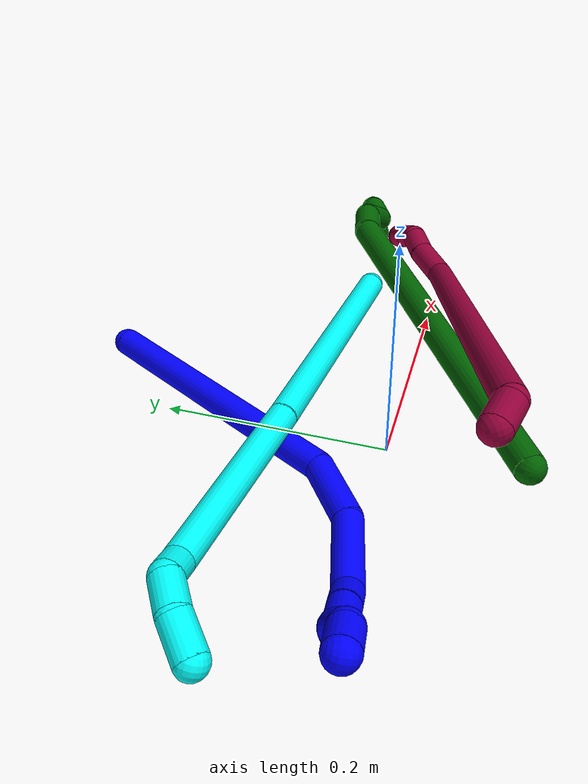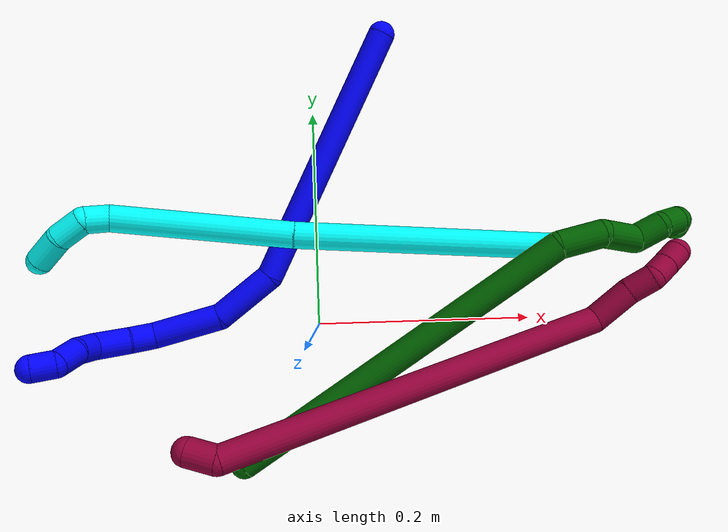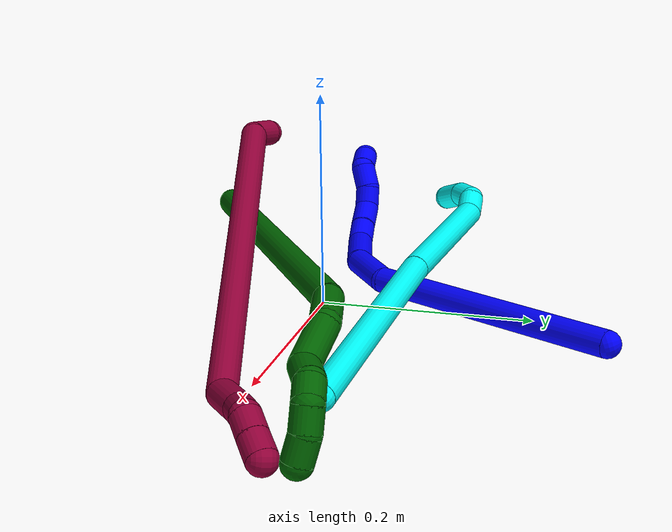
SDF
<sdf version="1.7">
 <world name="default">
  <model name="photoneo_s_sensor">
   <static>1</static>
   <pose>0 0 2 1.57079 1.57079 3.14159</pose>
   <link name="link">
    <inertial><mass>0.1</mass></inertial>
    <sensor name="sensor" type="depth">
     <update_rate>30</update_rate>
     <camera>
      <horizontal_fov>1.22</horizontal_fov>
      <image><width>1920</width><height>1200</height><format>B8G8R8</format></image>
      <clip><near>0.1</near><far>4</far></clip>
      <depth_camera><output>points</output></depth_camera>
     </camera>
     <plugin name="camera_plugin" filename="libgazebo_ros_depth_camera.so">
      <baseline>0.2</baseline>
      <alwaysOn>1</alwaysOn>
      <updateRate>0.0</updateRate>
      <cameraName>camera_ir</cameraName>
      <imageTopicName>/camera/color/image_raw</imageTopicName>
      <cameraInfoTopicName>/camera/color/camera_info</cameraInfoTopicName>
      <depthImageTopicName>/camera/depth/image_raw</depthImageTopicName>
      <depthImageCameraInfoTopicName>/camera/depth/camera_info</depthImageCameraInfoTopicName>
      <pointCloudTopicName>/camera/depth/points</pointCloudTopicName>
      <frameName>fr_optical</frameName>
      <pointCloudCutoff>0.1</pointCloudCutoff>
      <pointCloudCutoffMax>2.0</pointCloudCutoffMax>
      <distortionK1>0</distortionK1>
      <distortionK2>0</distortionK2>
      <distortionK3>0</distortionK3>
      <distortionT1>0</distortionT1>
      <distortionT2>0</distortionT2>
      <CxPrime>0</CxPrime>
      <Cx>0</Cx>
      <Cy>0</Cy>
      <focalLength>0</focalLength>
      <hackBaseline>0</hackBaseline>
     </plugin>
    </sensor>
   </link>
  </model>
  <model name="bin">
   <static>1</static>
   <link name="bottom">
    <collision name="collision-bottom">
     <pose>0 0 -0.01 0 -0 0</pose>
     <geometry><box><size>0.8 0.6 0.02</size></box></geometry>
     <surface>
      <friction><ode><mu>100</mu><mu2>100</mu2></ode></friction>
      <contact><collide_bitmask>65535</collide_bitmask></contact>
     </surface>
    </collision>
   </link>
   <link name="west_wall">
    <collision name="collision-west_wall">
     <pose>-0.41 0 0.1 0 -0 0</pose>
     <geometry><box><size>0.02 0.6 0.2</size></box></geometry>
     <surface>
      <friction><ode><mu>100</mu><mu2>100</mu2></ode></friction>
      <contact><collide_bitmask>65535</collide_bitmask></contact>
     </surface>
    </collision>
   </link>
   <link name="east_wall">
    <collision name="collision-east_wall">
     <pose>0.41 0 0.1 0 -0 0</pose>
     <geometry><box><size>0.02 0.6 0.2</size></box></geometry>
     <surface>
      <friction><ode><mu>100</mu><mu2>100</mu2></ode></friction>
      <contact><collide_bitmask>65535</collide_bitmask></contact>
     </surface>
    </collision>
   </link>
   <link name="south_wall">
    <collision name="collision-south_wall">
     <pose>0 -0.31 0.1 0 -0 0</pose>
     <geometry><box><size>0.8 0.02 0.2</size></box></geometry>
     <surface>
      <friction><ode><mu>100</mu><mu2>100</mu2></ode></friction>
      <contact><collide_bitmask>65535</collide_bitmask></contact>
     </surface>
    </collision>
   </link>
   <link name="north_wall">
    <collision name="collision-north_wall">
     <pose>0 0.31 0.1 0 -0 0</pose>
     <geometry><box><size>0.8 0.02 0.2</size></box></geometry>
     <surface>
      <friction><ode><mu>100</mu><mu2>100</mu2></ode></friction>
      <contact><collide_bitmask>65535</collide_bitmask></contact>
     </surface>
    </collision>
   </link>
  </model>
  <model name="1">
   <static>0</static>
   <link name="1">
    <collision name="collision-cylinder-e_1_1_4">
     <pose>-0.061601 -0.061433 -0.090619 2.54584 -0.512518 -1.41299</pose>
     <geometry><cylinder><radius>0.0125</radius><length>0.25124</length></cylinder></geometry>
     <surface>
      <friction><ode><mu>1.16</mu><mu2>1.16</mu2><slip1>0</slip1><slip2>0</slip2></ode></friction>
      <contact><ode><kp>1e+06</kp><kd>1</kd><max_vel>0</max_vel><min_depth>0.001</min_depth></ode></contact>
     </surface>
    </collision>
    <visual name="visual-cylinder-e_1_1_4">
     <pose>-0.061601 -0.061433 -0.090619 2.54584 -0.512518 -1.41299</pose>
     <geometry><cylinder><radius>0.0125</radius><length>0.25124</length></cylinder></geometry>
     <material><ambient>0 0 1 1</ambient></material>
    </visual>
    <collision name="collision-cylinder-e_2_4_5">
     <pose>-0.146285 -0.138587 -0.192291 2.18357 -0.876533 -1.46827</pose>
     <geometry><cylinder><radius>0.0125</radius><length>0.060073</length></cylinder></geometry>
     <surface>
      <friction><ode><mu>1.16</mu><mu2>1.16</mu2><slip1>0</slip1><slip2>0</slip2></ode></friction>
      <contact><ode><kp>1e+06</kp><kd>1</kd><max_vel>0</max_vel><min_depth>0.001</min_depth></ode></contact>
     </surface>
    </collision>
    <visual name="visual-cylinder-e_2_4_5">
     <pose>-0.146285 -0.138587 -0.192291 2.18357 -0.876533 -1.46827</pose>
     <geometry><cylinder><radius>0.0125</radius><length>0.060073</length></cylinder></geometry>
     <material><ambient>0 0 1 1</ambient></material>
    </visual>
    <collision name="collision-cylinder-e_3_5_6">
     <pose>-0.198591 -0.168714 -0.203225 1.56256 -1.11278 -1.10541</pose>
     <geometry><cylinder><radius>0.0125</radius><length>0.06516</length></cylinder></geometry>
     <surface>
      <friction><ode><mu>1.16</mu><mu2>1.16</mu2><slip1>0</slip1><slip2>0</slip2></ode></friction>
      <contact><ode><kp>1e+06</kp><kd>1</kd><max_vel>0</max_vel><min_depth>0.001</min_depth></ode></contact>
     </surface>
    </collision>
    <visual name="visual-cylinder-e_3_5_6">
     <pose>-0.198591 -0.168714 -0.203225 1.56256 -1.11278 -1.10541</pose>
     <geometry><cylinder><radius>0.0125</radius><length>0.06516</length></cylinder></geometry>
     <material><ambient>0 0 1 1</ambient></material>
    </visual>
    <collision name="collision-cylinder-e_4_6_7">
     <pose>-0.234542 -0.192557 -0.200102 1.26264 -0.596729 -0.442359</pose>
     <geometry><cylinder><radius>0.0125</radius><length>0.023949</length></cylinder></geometry>
     <surface>
      <friction><ode><mu>1.16</mu><mu2>1.16</mu2><slip1>0</slip1><slip2>0</slip2></ode></friction>
      <contact><ode><kp>1e+06</kp><kd>1</kd><max_vel>0</max_vel><min_depth>0.001</min_depth></ode></contact>
     </surface>
    </collision>
    <visual name="visual-cylinder-e_4_6_7">
     <pose>-0.234542 -0.192557 -0.200102 1.26264 -0.596729 -0.442359</pose>
     <geometry><cylinder><radius>0.0125</radius><length>0.023949</length></cylinder></geometry>
     <material><ambient>0 0 1 1</ambient></material>
    </visual>
    <collision name="collision-cylinder-e_5_7_8">
     <pose>-0.251666 -0.213442 -0.193259 1.2472 -0.71083 -0.521846</pose>
     <geometry><cylinder><radius>0.0125</radius><length>0.031864</length></cylinder></geometry>
     <surface>
      <friction><ode><mu>1.16</mu><mu2>1.16</mu2><slip1>0</slip1><slip2>0</slip2></ode></friction>
      <contact><ode><kp>1e+06</kp><kd>1</kd><max_vel>0</max_vel><min_depth>0.001</min_depth></ode></contact>
     </surface>
    </collision>
    <visual name="visual-cylinder-e_5_7_8">
     <pose>-0.251666 -0.213442 -0.193259 1.2472 -0.71083 -0.521846</pose>
     <geometry><cylinder><radius>0.0125</radius><length>0.031864</length></cylinder></geometry>
     <material><ambient>0 0 1 1</ambient></material>
    </visual>
    <collision name="collision-cylinder-e_6_8_9">
     <pose>-0.261903 -0.234998 -0.186156 1.25846 0.014832 0.010797</pose>
     <geometry><cylinder><radius>0.0125</radius><length>0.021247</length></cylinder></geometry>
     <surface>
      <friction><ode><mu>1.16</mu><mu2>1.16</mu2><slip1>0</slip1><slip2>0</slip2></ode></friction>
      <contact><ode><kp>1e+06</kp><kd>1</kd><max_vel>0</max_vel><min_depth>0.001</min_depth></ode></contact>
     </surface>
    </collision>
    <visual name="visual-cylinder-e_6_8_9">
     <pose>-0.261903 -0.234998 -0.186156 1.25846 0.014832 0.010797</pose>
     <geometry><cylinder><radius>0.0125</radius><length>0.021247</length></cylinder></geometry>
     <material><ambient>0 0 1 1</ambient></material>
    </visual>
    <collision name="collision-cylinder-e_7_9_10">
     <pose>-0.262941 -0.257236 -0.182487 1.53744 -0.09818 -0.094963</pose>
     <geometry><cylinder><radius>0.0125</radius><length>0.024391</length></cylinder></geometry>
     <surface>
      <friction><ode><mu>1.16</mu><mu2>1.16</mu2><slip1>0</slip1><slip2>0</slip2></ode></friction>
      <contact><ode><kp>1e+06</kp><kd>1</kd><max_vel>0</max_vel><min_depth>0.001</min_depth></ode></contact>
     </surface>
    </collision>
    <visual name="visual-cylinder-e_7_9_10">
     <pose>-0.262941 -0.257236 -0.182487 1.53744 -0.09818 -0.094963</pose>
     <geometry><cylinder><radius>0.0125</radius><length>0.024391</length></cylinder></geometry>
     <material><ambient>0 0 1 1</ambient></material>
    </visual>
    <collision name="collision-cylinder-e_8_10_2">
     <pose>-0.271958 -0.276797 -0.179749 1.26654 -0.787481 -0.592047</pose>
     <geometry><cylinder><radius>0.0125</radius><length>0.022076</length></cylinder></geometry>
     <surface>
      <friction><ode><mu>1.16</mu><mu2>1.16</mu2><slip1>0</slip1><slip2>0</slip2></ode></friction>
      <contact><ode><kp>1e+06</kp><kd>1</kd><max_vel>0</max_vel><min_depth>0.001</min_depth></ode></contact>
     </surface>
    </collision>
    <visual name="visual-cylinder-e_8_10_2">
     <pose>-0.271958 -0.276797 -0.179749 1.26654 -0.787481 -0.592047</pose>
     <geometry><cylinder><radius>0.0125</radius><length>0.022076</length></cylinder></geometry>
     <material><ambient>0 0 1 1</ambient></material>
    </visual>
    <collision name="collision-sphere-2">
     <pose>-0.279779 -0.284228 -0.177415 0 -0 0</pose>
     <geometry><sphere><radius>0.0125</radius></sphere></geometry>
     <surface>
      <friction><ode><mu>1.16</mu><mu2>1.16</mu2><slip1>0</slip1><slip2>0</slip2></ode></friction>
      <contact><ode><kp>1e+06</kp><kd>1</kd><max_vel>0</max_vel><min_depth>0.001</min_depth></ode></contact>
     </surface>
    </collision>
    <visual name="visual-sphere-2">
     <pose>-0.279779 -0.284228 -0.177415 0 -0 0</pose>
     <geometry><sphere><radius>0.0125</radius></sphere></geometry>
     <material><ambient>0 0 1 1</ambient></material>
    </visual>
    <collision name="collision-sphere-10">
     <pose>-0.264137 -0.269366 -0.182082 0 -0 0</pose>
     <geometry><sphere><radius>0.0125</radius></sphere></geometry>
     <surface>
      <friction><ode><mu>1.16</mu><mu2>1.16</mu2><slip1>0</slip1><slip2>0</slip2></ode></friction>
      <contact><ode><kp>1e+06</kp><kd>1</kd><max_vel>0</max_vel><min_depth>0.001</min_depth></ode></contact>
     </surface>
    </collision>
    <visual name="visual-sphere-10">
     <pose>-0.264137 -0.269366 -0.182082 0 -0 0</pose>
     <geometry><sphere><radius>0.0125</radius></sphere></geometry>
     <material><ambient>0 0 1 1</ambient></material>
    </visual>
    <collision name="collision-sphere-9">
     <pose>-0.261746 -0.245106 -0.182892 0 -0 0</pose>
     <geometry><sphere><radius>0.0125</radius></sphere></geometry>
     <surface>
      <friction><ode><mu>1.16</mu><mu2>1.16</mu2><slip1>0</slip1><slip2>0</slip2></ode></friction>
      <contact><ode><kp>1e+06</kp><kd>1</kd><max_vel>0</max_vel><min_depth>0.001</min_depth></ode></contact>
     </surface>
    </collision>
    <visual name="visual-sphere-9">
     <pose>-0.261746 -0.245106 -0.182892 0 -0 0</pose>
     <geometry><sphere><radius>0.0125</radius></sphere></geometry>
     <material><ambient>0 0 1 1</ambient></material>
    </visual>
    <collision name="collision-sphere-4">
     <pose>-0.123201 -0.122865 -0.181238 0 -0 0</pose>
     <geometry><sphere><radius>0.0125</radius></sphere></geometry>
     <surface>
      <friction><ode><mu>1.16</mu><mu2>1.16</mu2><slip1>0</slip1><slip2>0</slip2></ode></friction>
      <contact><ode><kp>1e+06</kp><kd>1</kd><max_vel>0</max_vel><min_depth>0.001</min_depth></ode></contact>
     </surface>
    </collision>
    <visual name="visual-sphere-4">
     <pose>-0.123201 -0.122865 -0.181238 0 -0 0</pose>
     <geometry><sphere><radius>0.0125</radius></sphere></geometry>
     <material><ambient>0 0 1 1</ambient></material>
    </visual>
    <collision name="collision-sphere-1">
     <geometry><sphere><radius>0.0125</radius></sphere></geometry>
     <surface>
      <friction><ode><mu>1.16</mu><mu2>1.16</mu2><slip1>0</slip1><slip2>0</slip2></ode></friction>
      <contact><ode><kp>1e+06</kp><kd>1</kd><max_vel>0</max_vel><min_depth>0.001</min_depth></ode></contact>
     </surface>
    </collision>
    <visual name="visual-sphere-1">
     <geometry><sphere><radius>0.0125</radius></sphere></geometry>
     <material><ambient>0 0 1 1</ambient></material>
    </visual>
    <collision name="collision-sphere-8">
     <pose>-0.262061 -0.224889 -0.18942 0 -0 0</pose>
     <geometry><sphere><radius>0.0125</radius></sphere></geometry>
     <surface>
      <friction><ode><mu>1.16</mu><mu2>1.16</mu2><slip1>0</slip1><slip2>0</slip2></ode></friction>
      <contact><ode><kp>1e+06</kp><kd>1</kd><max_vel>0</max_vel><min_depth>0.001</min_depth></ode></contact>
     </surface>
    </collision>
    <visual name="visual-sphere-8">
     <pose>-0.262061 -0.224889 -0.18942 0 -0 0</pose>
     <geometry><sphere><radius>0.0125</radius></sphere></geometry>
     <material><ambient>0 0 1 1</ambient></material>
    </visual>
    <collision name="collision-sphere-5">
     <pose>-0.169369 -0.154308 -0.203344 0 -0 0</pose>
     <geometry><sphere><radius>0.0125</radius></sphere></geometry>
     <surface>
      <friction><ode><mu>1.16</mu><mu2>1.16</mu2><slip1>0</slip1><slip2>0</slip2></ode></friction>
      <contact><ode><kp>1e+06</kp><kd>1</kd><max_vel>0</max_vel><min_depth>0.001</min_depth></ode></contact>
     </surface>
    </collision>
    <visual name="visual-sphere-5">
     <pose>-0.169369 -0.154308 -0.203344 0 -0 0</pose>
     <geometry><sphere><radius>0.0125</radius></sphere></geometry>
     <material><ambient>0 0 1 1</ambient></material>
    </visual>
    <collision name="collision-sphere-6">
     <pose>-0.227813 -0.183119 -0.203107 0 -0 0</pose>
     <geometry><sphere><radius>0.0125</radius></sphere></geometry>
     <surface>
      <friction><ode><mu>1.16</mu><mu2>1.16</mu2><slip1>0</slip1><slip2>0</slip2></ode></friction>
      <contact><ode><kp>1e+06</kp><kd>1</kd><max_vel>0</max_vel><min_depth>0.001</min_depth></ode></contact>
     </surface>
    </collision>
    <visual name="visual-sphere-6">
     <pose>-0.227813 -0.183119 -0.203107 0 -0 0</pose>
     <geometry><sphere><radius>0.0125</radius></sphere></geometry>
     <material><ambient>0 0 1 1</ambient></material>
    </visual>
    <collision name="collision-sphere-7">
     <pose>-0.241271 -0.201996 -0.197098 0 -0 0</pose>
     <geometry><sphere><radius>0.0125</radius></sphere></geometry>
     <surface>
      <friction><ode><mu>1.16</mu><mu2>1.16</mu2><slip1>0</slip1><slip2>0</slip2></ode></friction>
      <contact><ode><kp>1e+06</kp><kd>1</kd><max_vel>0</max_vel><min_depth>0.001</min_depth></ode></contact>
     </surface>
    </collision>
    <visual name="visual-sphere-7">
     <pose>-0.241271 -0.201996 -0.197098 0 -0 0</pose>
     <geometry><sphere><radius>0.0125</radius></sphere></geometry>
     <material><ambient>0 0 1 1</ambient></material>
    </visual>
    <inertial>
     <pose>-0.137645 -0.127087 -0.141771 0 -0 0</pose>
     <mass>0.5</mass>
     <inertia>
      <ixx>-0.000996</ixx>
      <ixy>0</ixy>
      <ixz>0</ixz>
      <iyy>-0.000968</iyy>
      <iyz>0</iyz>
      <izz>0.001365</izz>
     </inertia>
    </inertial>
   </link>
   <pose>0.067678 0.27225 0.011498 -1.2482 -0.447068 0.112847</pose>
  </model>
  <model name="3">
   <static>0</static>
   <link name="3">
    <collision name="collision-cylinder-e_1_1_4">
     <pose>-0.109169 0.001915 -0.061105 -3.11026 -1.0603 3.08814</pose>
     <geometry><cylinder><radius>0.0125</radius><length>0.250242</length></cylinder></geometry>
     <surface>
      <friction><ode><mu>1.16</mu><mu2>1.16</mu2><slip1>0</slip1><slip2>0</slip2></ode></friction>
      <contact><ode><kp>1e+06</kp><kd>1</kd><max_vel>0</max_vel><min_depth>0.001</min_depth></ode></contact>
     </surface>
    </collision>
    <visual name="visual-cylinder-e_1_1_4">
     <pose>-0.109169 0.001915 -0.061105 -3.11026 -1.0603 3.08814</pose>
     <geometry><cylinder><radius>0.0125</radius><length>0.250242</length></cylinder></geometry>
     <material><ambient>0.003922 1 0.996078 1</ambient></material>
    </visual>
    <collision name="collision-cylinder-e_2_4_5">
     <pose>-0.289275 0.008742 -0.16645 -3.03104 -1.01041 2.94216</pose>
     <geometry><cylinder><radius>0.0125</radius><length>0.167492</length></cylinder></geometry>
     <surface>
      <friction><ode><mu>1.16</mu><mu2>1.16</mu2><slip1>0</slip1><slip2>0</slip2></ode></friction>
      <contact><ode><kp>1e+06</kp><kd>1</kd><max_vel>0</max_vel><min_depth>0.001</min_depth></ode></contact>
     </surface>
    </collision>
    <visual name="visual-cylinder-e_2_4_5">
     <pose>-0.289275 0.008742 -0.16645 -3.03104 -1.01041 2.94216</pose>
     <geometry><cylinder><radius>0.0125</radius><length>0.167492</length></cylinder></geometry>
     <material><ambient>0.003922 1 0.996078 1</ambient></material>
    </visual>
    <collision name="collision-cylinder-e_3_5_6">
     <pose>-0.371616 0.012823 -0.212126 2.61772 -1.4264 -2.54056</pose>
     <geometry><cylinder><radius>0.0125</radius><length>0.023048</length></cylinder></geometry>
     <surface>
      <friction><ode><mu>1.16</mu><mu2>1.16</mu2><slip1>0</slip1><slip2>0</slip2></ode></friction>
      <contact><ode><kp>1e+06</kp><kd>1</kd><max_vel>0</max_vel><min_depth>0.001</min_depth></ode></contact>
     </surface>
    </collision>
    <visual name="visual-cylinder-e_3_5_6">
     <pose>-0.371616 0.012823 -0.212126 2.61772 -1.4264 -2.54056</pose>
     <geometry><cylinder><radius>0.0125</radius><length>0.023048</length></cylinder></geometry>
     <material><ambient>0.003922 1 0.996078 1</ambient></material>
    </visual>
    <collision name="collision-cylinder-e_4_6_7">
     <pose>-0.391951 0.003469 -0.220019 2.21903 -0.695765 -1.2606</pose>
     <geometry><cylinder><radius>0.0125</radius><length>0.027866</length></cylinder></geometry>
     <surface>
      <friction><ode><mu>1.16</mu><mu2>1.16</mu2><slip1>0</slip1><slip2>0</slip2></ode></friction>
      <contact><ode><kp>1e+06</kp><kd>1</kd><max_vel>0</max_vel><min_depth>0.001</min_depth></ode></contact>
     </surface>
    </collision>
    <visual name="visual-cylinder-e_4_6_7">
     <pose>-0.391951 0.003469 -0.220019 2.21903 -0.695765 -1.2606</pose>
     <geometry><cylinder><radius>0.0125</radius><length>0.027866</length></cylinder></geometry>
     <material><ambient>0.003922 1 0.996078 1</ambient></material>
    </visual>
    <collision name="collision-cylinder-e_5_7_2">
     <pose>-0.406836 -0.016279 -0.23566 2.25662 -0.389629 -0.789191</pose>
     <geometry><cylinder><radius>0.0125</radius><length>0.031352</length></cylinder></geometry>
     <surface>
      <friction><ode><mu>1.16</mu><mu2>1.16</mu2><slip1>0</slip1><slip2>0</slip2></ode></friction>
      <contact><ode><kp>1e+06</kp><kd>1</kd><max_vel>0</max_vel><min_depth>0.001</min_depth></ode></contact>
     </surface>
    </collision>
    <visual name="visual-cylinder-e_5_7_2">
     <pose>-0.406836 -0.016279 -0.23566 2.25662 -0.389629 -0.789191</pose>
     <geometry><cylinder><radius>0.0125</radius><length>0.031352</length></cylinder></geometry>
     <material><ambient>0.003922 1 0.996078 1</ambient></material>
    </visual>
    <collision name="collision-sphere-2">
     <pose>-0.41279 -0.027501 -0.244844 0 -0 0</pose>
     <geometry><sphere><radius>0.0125</radius></sphere></geometry>
     <surface>
      <friction><ode><mu>1.16</mu><mu2>1.16</mu2><slip1>0</slip1><slip2>0</slip2></ode></friction>
      <contact><ode><kp>1e+06</kp><kd>1</kd><max_vel>0</max_vel><min_depth>0.001</min_depth></ode></contact>
     </surface>
    </collision>
    <visual name="visual-sphere-2">
     <pose>-0.41279 -0.027501 -0.244844 0 -0 0</pose>
     <geometry><sphere><radius>0.0125</radius></sphere></geometry>
     <material><ambient>0.003922 1 0.996078 1</ambient></material>
    </visual>
    <collision name="collision-sphere-7">
     <pose>-0.400881 -0.005056 -0.226476 0 -0 0</pose>
     <geometry><sphere><radius>0.0125</radius></sphere></geometry>
     <surface>
      <friction><ode><mu>1.16</mu><mu2>1.16</mu2><slip1>0</slip1><slip2>0</slip2></ode></friction>
      <contact><ode><kp>1e+06</kp><kd>1</kd><max_vel>0</max_vel><min_depth>0.001</min_depth></ode></contact>
     </surface>
    </collision>
    <visual name="visual-sphere-7">
     <pose>-0.400881 -0.005056 -0.226476 0 -0 0</pose>
     <geometry><sphere><radius>0.0125</radius></sphere></geometry>
     <material><ambient>0.003922 1 0.996078 1</ambient></material>
    </visual>
    <collision name="collision-sphere-6">
     <pose>-0.38302 0.011994 -0.213562 0 -0 0</pose>
     <geometry><sphere><radius>0.0125</radius></sphere></geometry>
     <surface>
      <friction><ode><mu>1.16</mu><mu2>1.16</mu2><slip1>0</slip1><slip2>0</slip2></ode></friction>
      <contact><ode><kp>1e+06</kp><kd>1</kd><max_vel>0</max_vel><min_depth>0.001</min_depth></ode></contact>
     </surface>
    </collision>
    <visual name="visual-sphere-6">
     <pose>-0.38302 0.011994 -0.213562 0 -0 0</pose>
     <geometry><sphere><radius>0.0125</radius></sphere></geometry>
     <material><ambient>0.003922 1 0.996078 1</ambient></material>
    </visual>
    <collision name="collision-sphere-5">
     <pose>-0.360212 0.013653 -0.210691 0 -0 0</pose>
     <geometry><sphere><radius>0.0125</radius></sphere></geometry>
     <surface>
      <friction><ode><mu>1.16</mu><mu2>1.16</mu2><slip1>0</slip1><slip2>0</slip2></ode></friction>
      <contact><ode><kp>1e+06</kp><kd>1</kd><max_vel>0</max_vel><min_depth>0.001</min_depth></ode></contact>
     </surface>
    </collision>
    <visual name="visual-sphere-5">
     <pose>-0.360212 0.013653 -0.210691 0 -0 0</pose>
     <geometry><sphere><radius>0.0125</radius></sphere></geometry>
     <material><ambient>0.003922 1 0.996078 1</ambient></material>
    </visual>
    <collision name="collision-sphere-1">
     <geometry><sphere><radius>0.0125</radius></sphere></geometry>
     <surface>
      <friction><ode><mu>1.16</mu><mu2>1.16</mu2><slip1>0</slip1><slip2>0</slip2></ode></friction>
      <contact><ode><kp>1e+06</kp><kd>1</kd><max_vel>0</max_vel><min_depth>0.001</min_depth></ode></contact>
     </surface>
    </collision>
    <visual name="visual-sphere-1">
     <geometry><sphere><radius>0.0125</radius></sphere></geometry>
     <material><ambient>0.003922 1 0.996078 1</ambient></material>
    </visual>
    <collision name="collision-sphere-4">
     <pose>-0.218337 0.003831 -0.12221 0 -0 0</pose>
     <geometry><sphere><radius>0.0125</radius></sphere></geometry>
     <surface>
      <friction><ode><mu>1.16</mu><mu2>1.16</mu2><slip1>0</slip1><slip2>0</slip2></ode></friction>
      <contact><ode><kp>1e+06</kp><kd>1</kd><max_vel>0</max_vel><min_depth>0.001</min_depth></ode></contact>
     </surface>
    </collision>
    <visual name="visual-sphere-4">
     <pose>-0.218337 0.003831 -0.12221 0 -0 0</pose>
     <geometry><sphere><radius>0.0125</radius></sphere></geometry>
     <material><ambient>0.003922 1 0.996078 1</ambient></material>
    </visual>
    <inertial>
     <pose>-0.216024 0.003651 -0.123157 0 -0 0</pose>
     <mass>0.5</mass>
     <inertia>
      <ixx>-0.000807</ixx>
      <ixy>0</ixy>
      <ixz>0</ixz>
      <iyy>0.001781</iyy>
      <iyz>0</iyz>
      <izz>0.001432</izz>
     </inertia>
    </inertial>
   </link>
   <pose>0.229785 0.067029 0.011979 0.136751 0.597538 0.008771</pose>
  </model>
  <model name="6">
   <static>0</static>
   <link name="6">
    <collision name="collision-cylinder-e_1_1_4">
     <pose>0.025796 0.067291 0.149048 -0.42408 0.156452 -0.033746</pose>
     <geometry><cylinder><radius>0.0125</radius><length>0.331112</length></cylinder></geometry>
     <surface>
      <friction><ode><mu>1.16</mu><mu2>1.16</mu2><slip1>0</slip1><slip2>0</slip2></ode></friction>
      <contact><ode><kp>1e+06</kp><kd>1</kd><max_vel>0</max_vel><min_depth>0.001</min_depth></ode></contact>
     </surface>
    </collision>
    <visual name="visual-cylinder-e_1_1_4">
     <pose>0.025796 0.067291 0.149048 -0.42408 0.156452 -0.033746</pose>
     <geometry><cylinder><radius>0.0125</radius><length>0.331112</length></cylinder></geometry>
     <material><ambient>0 0.392157 0.003922 1</ambient></material>
    </visual>
    <collision name="collision-cylinder-e_2_4_5">
     <pose>0.050554 0.148426 0.312913 -0.751442 -0.051146 0.020179</pose>
     <geometry><cylinder><radius>0.0125</radius><length>0.04061</length></cylinder></geometry>
     <surface>
      <friction><ode><mu>1.16</mu><mu2>1.16</mu2><slip1>0</slip1><slip2>0</slip2></ode></friction>
      <contact><ode><kp>1e+06</kp><kd>1</kd><max_vel>0</max_vel><min_depth>0.001</min_depth></ode></contact>
     </surface>
    </collision>
    <visual name="visual-cylinder-e_2_4_5">
     <pose>0.050554 0.148426 0.312913 -0.751442 -0.051146 0.020179</pose>
     <geometry><cylinder><radius>0.0125</radius><length>0.04061</length></cylinder></geometry>
     <material><ambient>0 0.392157 0.003922 1</ambient></material>
    </visual>
    <collision name="collision-cylinder-e_3_5_6">
     <pose>0.039061 0.177072 0.336431 -1.03937 -0.546956 0.318266</pose>
     <geometry><cylinder><radius>0.0125</radius><length>0.040205</length></cylinder></geometry>
     <surface>
      <friction><ode><mu>1.16</mu><mu2>1.16</mu2><slip1>0</slip1><slip2>0</slip2></ode></friction>
      <contact><ode><kp>1e+06</kp><kd>1</kd><max_vel>0</max_vel><min_depth>0.001</min_depth></ode></contact>
     </surface>
    </collision>
    <visual name="visual-cylinder-e_3_5_6">
     <pose>0.039061 0.177072 0.336431 -1.03937 -0.546956 0.318266</pose>
     <geometry><cylinder><radius>0.0125</radius><length>0.040205</length></cylinder></geometry>
     <material><ambient>0 0.392157 0.003922 1</ambient></material>
    </visual>
    <collision name="collision-cylinder-e_4_6_7">
     <pose>0.029568 0.198612 0.35644 -0.53738 0.072977 -0.020102</pose>
     <geometry><cylinder><radius>0.0125</radius><length>0.026395</length></cylinder></geometry>
     <surface>
      <friction><ode><mu>1.16</mu><mu2>1.16</mu2><slip1>0</slip1><slip2>0</slip2></ode></friction>
      <contact><ode><kp>1e+06</kp><kd>1</kd><max_vel>0</max_vel><min_depth>0.001</min_depth></ode></contact>
     </surface>
    </collision>
    <visual name="visual-cylinder-e_4_6_7">
     <pose>0.029568 0.198612 0.35644 -0.53738 0.072977 -0.020102</pose>
     <geometry><cylinder><radius>0.0125</radius><length>0.026395</length></cylinder></geometry>
     <material><ambient>0 0.392157 0.003922 1</ambient></material>
    </visual>
    <collision name="collision-cylinder-e_5_7_8">
     <pose>0.026622 0.211119 0.374964 -0.674401 -0.40019 0.141967</pose>
     <geometry><cylinder><radius>0.0125</radius><length>0.020065</length></cylinder></geometry>
     <surface>
      <friction><ode><mu>1.16</mu><mu2>1.16</mu2><slip1>0</slip1><slip2>0</slip2></ode></friction>
      <contact><ode><kp>1e+06</kp><kd>1</kd><max_vel>0</max_vel><min_depth>0.001</min_depth></ode></contact>
     </surface>
    </collision>
    <visual name="visual-cylinder-e_5_7_8">
     <pose>0.026622 0.211119 0.374964 -0.674401 -0.40019 0.141967</pose>
     <geometry><cylinder><radius>0.0125</radius><length>0.020065</length></cylinder></geometry>
     <material><ambient>0 0.392157 0.003922 1</ambient></material>
    </visual>
    <collision name="collision-cylinder-e_6_8_9">
     <pose>0.013376 0.219116 0.385957 -0.532964 -1.13183 0.343383</pose>
     <geometry><cylinder><radius>0.0125</radius><length>0.02063</length></cylinder></geometry>
     <surface>
      <friction><ode><mu>1.16</mu><mu2>1.16</mu2><slip1>0</slip1><slip2>0</slip2></ode></friction>
      <contact><ode><kp>1e+06</kp><kd>1</kd><max_vel>0</max_vel><min_depth>0.001</min_depth></ode></contact>
     </surface>
    </collision>
    <visual name="visual-cylinder-e_6_8_9">
     <pose>0.013376 0.219116 0.385957 -0.532964 -1.13183 0.343383</pose>
     <geometry><cylinder><radius>0.0125</radius><length>0.02063</length></cylinder></geometry>
     <material><ambient>0 0.392157 0.003922 1</ambient></material>
    </visual>
    <collision name="collision-cylinder-e_7_9_2">
     <pose>-0.006132 0.22366 0.390855 -1.11947 -1.32294 0.907632</pose>
     <geometry><cylinder><radius>0.0125</radius><length>0.020983</length></cylinder></geometry>
     <surface>
      <friction><ode><mu>1.16</mu><mu2>1.16</mu2><slip1>0</slip1><slip2>0</slip2></ode></friction>
      <contact><ode><kp>1e+06</kp><kd>1</kd><max_vel>0</max_vel><min_depth>0.001</min_depth></ode></contact>
     </surface>
    </collision>
    <visual name="visual-cylinder-e_7_9_2">
     <pose>-0.006132 0.22366 0.390855 -1.11947 -1.32294 0.907632</pose>
     <geometry><cylinder><radius>0.0125</radius><length>0.020983</length></cylinder></geometry>
     <material><ambient>0 0.392157 0.003922 1</ambient></material>
    </visual>
    <collision name="collision-sphere-2">
     <pose>-0.016303 0.225976 0.391978 0 -0 0</pose>
     <geometry><sphere><radius>0.0125</radius></sphere></geometry>
     <surface>
      <friction><ode><mu>1.16</mu><mu2>1.16</mu2><slip1>0</slip1><slip2>0</slip2></ode></friction>
      <contact><ode><kp>1e+06</kp><kd>1</kd><max_vel>0</max_vel><min_depth>0.001</min_depth></ode></contact>
     </surface>
    </collision>
    <visual name="visual-sphere-2">
     <pose>-0.016303 0.225976 0.391978 0 -0 0</pose>
     <geometry><sphere><radius>0.0125</radius></sphere></geometry>
     <material><ambient>0 0.392157 0.003922 1</ambient></material>
    </visual>
    <collision name="collision-sphere-9">
     <pose>0.004039 0.221344 0.389733 0 -0 0</pose>
     <geometry><sphere><radius>0.0125</radius></sphere></geometry>
     <surface>
      <friction><ode><mu>1.16</mu><mu2>1.16</mu2><slip1>0</slip1><slip2>0</slip2></ode></friction>
      <contact><ode><kp>1e+06</kp><kd>1</kd><max_vel>0</max_vel><min_depth>0.001</min_depth></ode></contact>
     </surface>
    </collision>
    <visual name="visual-sphere-9">
     <pose>0.004039 0.221344 0.389733 0 -0 0</pose>
     <geometry><sphere><radius>0.0125</radius></sphere></geometry>
     <material><ambient>0 0.392157 0.003922 1</ambient></material>
    </visual>
    <collision name="collision-sphere-4">
     <pose>0.051592 0.134582 0.298095 0 -0 0</pose>
     <geometry><sphere><radius>0.0125</radius></sphere></geometry>
     <surface>
      <friction><ode><mu>1.16</mu><mu2>1.16</mu2><slip1>0</slip1><slip2>0</slip2></ode></friction>
      <contact><ode><kp>1e+06</kp><kd>1</kd><max_vel>0</max_vel><min_depth>0.001</min_depth></ode></contact>
     </surface>
    </collision>
    <visual name="visual-sphere-4">
     <pose>0.051592 0.134582 0.298095 0 -0 0</pose>
     <geometry><sphere><radius>0.0125</radius></sphere></geometry>
     <material><ambient>0 0.392157 0.003922 1</ambient></material>
    </visual>
    <collision name="collision-sphere-1">
     <geometry><sphere><radius>0.0125</radius></sphere></geometry>
     <surface>
      <friction><ode><mu>1.16</mu><mu2>1.16</mu2><slip1>0</slip1><slip2>0</slip2></ode></friction>
      <contact><ode><kp>1e+06</kp><kd>1</kd><max_vel>0</max_vel><min_depth>0.001</min_depth></ode></contact>
     </surface>
    </collision>
    <visual name="visual-sphere-1">
     <geometry><sphere><radius>0.0125</radius></sphere></geometry>
     <material><ambient>0 0.392157 0.003922 1</ambient></material>
    </visual>
    <collision name="collision-sphere-8">
     <pose>0.022713 0.216889 0.382181 0 -0 0</pose>
     <geometry><sphere><radius>0.0125</radius></sphere></geometry>
     <surface>
      <friction><ode><mu>1.16</mu><mu2>1.16</mu2><slip1>0</slip1><slip2>0</slip2></ode></friction>
      <contact><ode><kp>1e+06</kp><kd>1</kd><max_vel>0</max_vel><min_depth>0.001</min_depth></ode></contact>
     </surface>
    </collision>
    <visual name="visual-sphere-8">
     <pose>0.022713 0.216889 0.382181 0 -0 0</pose>
     <geometry><sphere><radius>0.0125</radius></sphere></geometry>
     <material><ambient>0 0.392157 0.003922 1</ambient></material>
    </visual>
    <collision name="collision-sphere-5">
     <pose>0.049516 0.16227 0.32773 0 -0 0</pose>
     <geometry><sphere><radius>0.0125</radius></sphere></geometry>
     <surface>
      <friction><ode><mu>1.16</mu><mu2>1.16</mu2><slip1>0</slip1><slip2>0</slip2></ode></friction>
      <contact><ode><kp>1e+06</kp><kd>1</kd><max_vel>0</max_vel><min_depth>0.001</min_depth></ode></contact>
     </surface>
    </collision>
    <visual name="visual-sphere-5">
     <pose>0.049516 0.16227 0.32773 0 -0 0</pose>
     <geometry><sphere><radius>0.0125</radius></sphere></geometry>
     <material><ambient>0 0.392157 0.003922 1</ambient></material>
    </visual>
    <collision name="collision-sphere-6">
     <pose>0.028606 0.191874 0.345132 0 -0 0</pose>
     <geometry><sphere><radius>0.0125</radius></sphere></geometry>
     <surface>
      <friction><ode><mu>1.16</mu><mu2>1.16</mu2><slip1>0</slip1><slip2>0</slip2></ode></friction>
      <contact><ode><kp>1e+06</kp><kd>1</kd><max_vel>0</max_vel><min_depth>0.001</min_depth></ode></contact>
     </surface>
    </collision>
    <visual name="visual-sphere-6">
     <pose>0.028606 0.191874 0.345132 0 -0 0</pose>
     <geometry><sphere><radius>0.0125</radius></sphere></geometry>
     <material><ambient>0 0.392157 0.003922 1</ambient></material>
    </visual>
    <collision name="collision-sphere-7">
     <pose>0.03053 0.20535 0.367747 0 -0 0</pose>
     <geometry><sphere><radius>0.0125</radius></sphere></geometry>
     <surface>
      <friction><ode><mu>1.16</mu><mu2>1.16</mu2><slip1>0</slip1><slip2>0</slip2></ode></friction>
      <contact><ode><kp>1e+06</kp><kd>1</kd><max_vel>0</max_vel><min_depth>0.001</min_depth></ode></contact>
     </surface>
    </collision>
    <visual name="visual-sphere-7">
     <pose>0.03053 0.20535 0.367747 0 -0 0</pose>
     <geometry><sphere><radius>0.0125</radius></sphere></geometry>
     <material><ambient>0 0.392157 0.003922 1</ambient></material>
    </visual>
    <inertial>
     <pose>0.027253 0.108239 0.217361 0 -0 0</pose>
     <mass>0.5</mass>
     <inertia>
      <ixx>0.002917</ixx>
      <ixy>0</ixy>
      <ixz>0</ixz>
      <iyy>0.002709</iyy>
      <iyz>0</iyz>
      <izz>-0.001683</izz>
     </inertia>
    </inertial>
   </link>
   <pose>-0.064338 -0.113308 0.07387 2.61839 -1.36929 1.51509</pose>
  </model>
  <model name="8">
   <static>0</static>
   <link name="8">
    <collision name="collision-cylinder-e_1_1_4">
     <pose>0.004826 -0.00671 -0.010203 2.55983 0.376374 1.13313</pose>
     <geometry><cylinder><radius>0.0125</radius><length>0.026262</length></cylinder></geometry>
     <surface>
      <friction><ode><mu>1.16</mu><mu2>1.16</mu2><slip1>0</slip1><slip2>0</slip2></ode></friction>
      <contact><ode><kp>1e+06</kp><kd>1</kd><max_vel>0</max_vel><min_depth>0.001</min_depth></ode></contact>
     </surface>
    </collision>
    <visual name="visual-cylinder-e_1_1_4">
     <pose>0.004826 -0.00671 -0.010203 2.55983 0.376374 1.13313</pose>
     <geometry><cylinder><radius>0.0125</radius><length>0.026262</length></cylinder></geometry>
     <material><ambient>0.584314 0 0.227451 1</ambient></material>
    </visual>
    <collision name="collision-cylinder-e_2_4_5">
     <pose>0.159606 -0.107297 -0.068639 2.04542 0.957504 1.40922</pose>
     <geometry><cylinder><radius>0.0125</radius><length>0.366744</length></cylinder></geometry>
     <surface>
      <friction><ode><mu>1.16</mu><mu2>1.16</mu2><slip1>0</slip1><slip2>0</slip2></ode></friction>
      <contact><ode><kp>1e+06</kp><kd>1</kd><max_vel>0</max_vel><min_depth>0.001</min_depth></ode></contact>
     </surface>
    </collision>
    <visual name="visual-cylinder-e_2_4_5">
     <pose>0.159606 -0.107297 -0.068639 2.04542 0.957504 1.40922</pose>
     <geometry><cylinder><radius>0.0125</radius><length>0.366744</length></cylinder></geometry>
     <material><ambient>0.584314 0 0.227451 1</ambient></material>
    </visual>
    <collision name="collision-cylinder-e_3_5_6">
     <pose>0.318924 -0.219614 -0.11601 1.52404 0.469382 0.448663</pose>
     <geometry><cylinder><radius>0.0125</radius><length>0.041401</length></cylinder></geometry>
     <surface>
      <friction><ode><mu>1.16</mu><mu2>1.16</mu2><slip1>0</slip1><slip2>0</slip2></ode></friction>
      <contact><ode><kp>1e+06</kp><kd>1</kd><max_vel>0</max_vel><min_depth>0.001</min_depth></ode></contact>
     </surface>
    </collision>
    <visual name="visual-cylinder-e_3_5_6">
     <pose>0.318924 -0.219614 -0.11601 1.52404 0.469382 0.448663</pose>
     <geometry><cylinder><radius>0.0125</radius><length>0.041401</length></cylinder></geometry>
     <material><ambient>0.584314 0 0.227451 1</ambient></material>
    </visual>
    <collision name="collision-cylinder-e_4_6_7">
     <pose>0.333119 -0.249643 -0.116698 1.70385 0.391904 0.446126</pose>
     <geometry><cylinder><radius>0.0125</radius><length>0.025298</length></cylinder></geometry>
     <surface>
      <friction><ode><mu>1.16</mu><mu2>1.16</mu2><slip1>0</slip1><slip2>0</slip2></ode></friction>
      <contact><ode><kp>1e+06</kp><kd>1</kd><max_vel>0</max_vel><min_depth>0.001</min_depth></ode></contact>
     </surface>
    </collision>
    <visual name="visual-cylinder-e_4_6_7">
     <pose>0.333119 -0.249643 -0.116698 1.70385 0.391904 0.446126</pose>
     <geometry><cylinder><radius>0.0125</radius><length>0.025298</length></cylinder></geometry>
     <material><ambient>0.584314 0 0.227451 1</ambient></material>
    </visual>
    <collision name="collision-cylinder-e_5_7_8">
     <pose>0.346529 -0.266353 -0.117247 1.37777 1.02409 0.866935</pose>
     <geometry><cylinder><radius>0.0125</radius><length>0.020087</length></cylinder></geometry>
     <surface>
      <friction><ode><mu>1.16</mu><mu2>1.16</mu2><slip1>0</slip1><slip2>0</slip2></ode></friction>
      <contact><ode><kp>1e+06</kp><kd>1</kd><max_vel>0</max_vel><min_depth>0.001</min_depth></ode></contact>
     </surface>
    </collision>
    <visual name="visual-cylinder-e_5_7_8">
     <pose>0.346529 -0.266353 -0.117247 1.37777 1.02409 0.866935</pose>
     <geometry><cylinder><radius>0.0125</radius><length>0.020087</length></cylinder></geometry>
     <material><ambient>0.584314 0 0.227451 1</ambient></material>
    </visual>
    <collision name="collision-cylinder-e_6_8_2">
     <pose>0.36378 -0.276513 -0.115001 1.32854 1.03179 0.835772</pose>
     <geometry><cylinder><radius>0.0125</radius><length>0.020208</length></cylinder></geometry>
     <surface>
      <friction><ode><mu>1.16</mu><mu2>1.16</mu2><slip1>0</slip1><slip2>0</slip2></ode></friction>
      <contact><ode><kp>1e+06</kp><kd>1</kd><max_vel>0</max_vel><min_depth>0.001</min_depth></ode></contact>
     </surface>
    </collision>
    <visual name="visual-cylinder-e_6_8_2">
     <pose>0.36378 -0.276513 -0.115001 1.32854 1.03179 0.835772</pose>
     <geometry><cylinder><radius>0.0125</radius><length>0.020208</length></cylinder></geometry>
     <material><ambient>0.584314 0 0.227451 1</ambient></material>
    </visual>
    <collision name="collision-sphere-2">
     <pose>0.372452 -0.281547 -0.113757 0 -0 0</pose>
     <geometry><sphere><radius>0.0125</radius></sphere></geometry>
     <surface>
      <friction><ode><mu>1.16</mu><mu2>1.16</mu2><slip1>0</slip1><slip2>0</slip2></ode></friction>
      <contact><ode><kp>1e+06</kp><kd>1</kd><max_vel>0</max_vel><min_depth>0.001</min_depth></ode></contact>
     </surface>
    </collision>
    <visual name="visual-sphere-2">
     <pose>0.372452 -0.281547 -0.113757 0 -0 0</pose>
     <geometry><sphere><radius>0.0125</radius></sphere></geometry>
     <material><ambient>0.584314 0 0.227451 1</ambient></material>
    </visual>
    <collision name="collision-sphere-4">
     <pose>0.009653 -0.013421 -0.020406 0 -0 0</pose>
     <geometry><sphere><radius>0.0125</radius></sphere></geometry>
     <surface>
      <friction><ode><mu>1.16</mu><mu2>1.16</mu2><slip1>0</slip1><slip2>0</slip2></ode></friction>
      <contact><ode><kp>1e+06</kp><kd>1</kd><max_vel>0</max_vel><min_depth>0.001</min_depth></ode></contact>
     </surface>
    </collision>
    <visual name="visual-sphere-4">
     <pose>0.009653 -0.013421 -0.020406 0 -0 0</pose>
     <geometry><sphere><radius>0.0125</radius></sphere></geometry>
     <material><ambient>0.584314 0 0.227451 1</ambient></material>
    </visual>
    <collision name="collision-sphere-1">
     <geometry><sphere><radius>0.0125</radius></sphere></geometry>
     <surface>
      <friction><ode><mu>1.16</mu><mu2>1.16</mu2><slip1>0</slip1><slip2>0</slip2></ode></friction>
      <contact><ode><kp>1e+06</kp><kd>1</kd><max_vel>0</max_vel><min_depth>0.001</min_depth></ode></contact>
     </surface>
    </collision>
    <visual name="visual-sphere-1">
     <geometry><sphere><radius>0.0125</radius></sphere></geometry>
     <material><ambient>0.584314 0 0.227451 1</ambient></material>
    </visual>
    <collision name="collision-sphere-8">
     <pose>0.355109 -0.271478 -0.116245 0 -0 0</pose>
     <geometry><sphere><radius>0.0125</radius></sphere></geometry>
     <surface>
      <friction><ode><mu>1.16</mu><mu2>1.16</mu2><slip1>0</slip1><slip2>0</slip2></ode></friction>
      <contact><ode><kp>1e+06</kp><kd>1</kd><max_vel>0</max_vel><min_depth>0.001</min_depth></ode></contact>
     </surface>
    </collision>
    <visual name="visual-sphere-8">
     <pose>0.355109 -0.271478 -0.116245 0 -0 0</pose>
     <geometry><sphere><radius>0.0125</radius></sphere></geometry>
     <material><ambient>0.584314 0 0.227451 1</ambient></material>
    </visual>
    <collision name="collision-sphere-5">
     <pose>0.30956 -0.201173 -0.116873 0 -0 0</pose>
     <geometry><sphere><radius>0.0125</radius></sphere></geometry>
     <surface>
      <friction><ode><mu>1.16</mu><mu2>1.16</mu2><slip1>0</slip1><slip2>0</slip2></ode></friction>
      <contact><ode><kp>1e+06</kp><kd>1</kd><max_vel>0</max_vel><min_depth>0.001</min_depth></ode></contact>
     </surface>
    </collision>
    <visual name="visual-sphere-5">
     <pose>0.30956 -0.201173 -0.116873 0 -0 0</pose>
     <geometry><sphere><radius>0.0125</radius></sphere></geometry>
     <material><ambient>0.584314 0 0.227451 1</ambient></material>
    </visual>
    <collision name="collision-sphere-6">
     <pose>0.328288 -0.238056 -0.115147 0 -0 0</pose>
     <geometry><sphere><radius>0.0125</radius></sphere></geometry>
     <surface>
      <friction><ode><mu>1.16</mu><mu2>1.16</mu2><slip1>0</slip1><slip2>0</slip2></ode></friction>
      <contact><ode><kp>1e+06</kp><kd>1</kd><max_vel>0</max_vel><min_depth>0.001</min_depth></ode></contact>
     </surface>
    </collision>
    <visual name="visual-sphere-6">
     <pose>0.328288 -0.238056 -0.115147 0 -0 0</pose>
     <geometry><sphere><radius>0.0125</radius></sphere></geometry>
     <material><ambient>0.584314 0 0.227451 1</ambient></material>
    </visual>
    <collision name="collision-sphere-7">
     <pose>0.33795 -0.261229 -0.118249 0 -0 0</pose>
     <geometry><sphere><radius>0.0125</radius></sphere></geometry>
     <surface>
      <friction><ode><mu>1.16</mu><mu2>1.16</mu2><slip1>0</slip1><slip2>0</slip2></ode></friction>
      <contact><ode><kp>1e+06</kp><kd>1</kd><max_vel>0</max_vel><min_depth>0.001</min_depth></ode></contact>
     </surface>
    </collision>
    <visual name="visual-sphere-7">
     <pose>0.33795 -0.261229 -0.118249 0 -0 0</pose>
     <geometry><sphere><radius>0.0125</radius></sphere></geometry>
     <material><ambient>0.584314 0 0.227451 1</ambient></material>
    </visual>
    <inertial>
     <pose>0.189209 -0.131745 -0.07575 0 -0 0</pose>
     <mass>0.5</mass>
     <inertia>
      <ixx>0.002771</ixx>
      <ixy>0</ixy>
      <ixz>0</ixz>
      <iyy>0.00499</iyy>
      <iyz>0</iyz>
      <izz>-0.001266</izz>
     </inertia>
    </inertial>
   </link>
   <pose>-0.101009 -0.085329 0.138199 -1.88871 0.947795 0.3582</pose>
  </model>
 </world>
</sdf>
